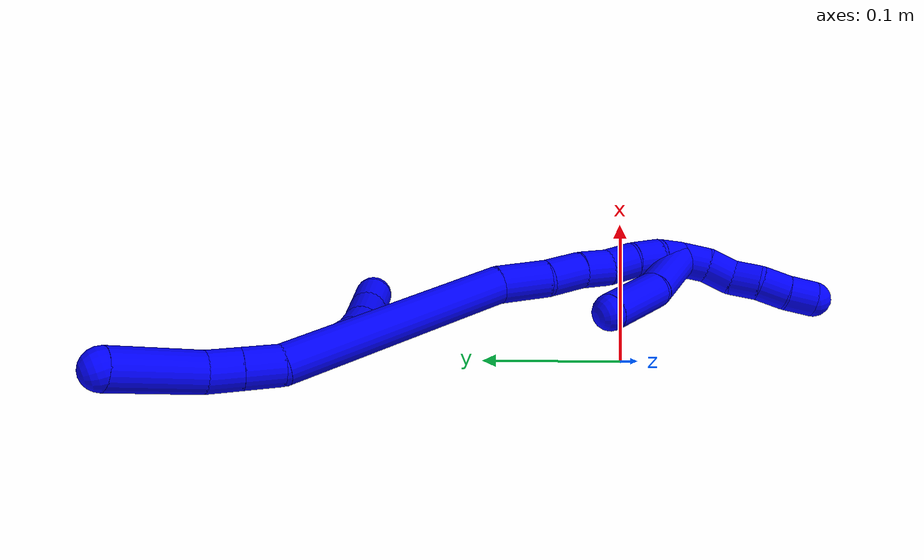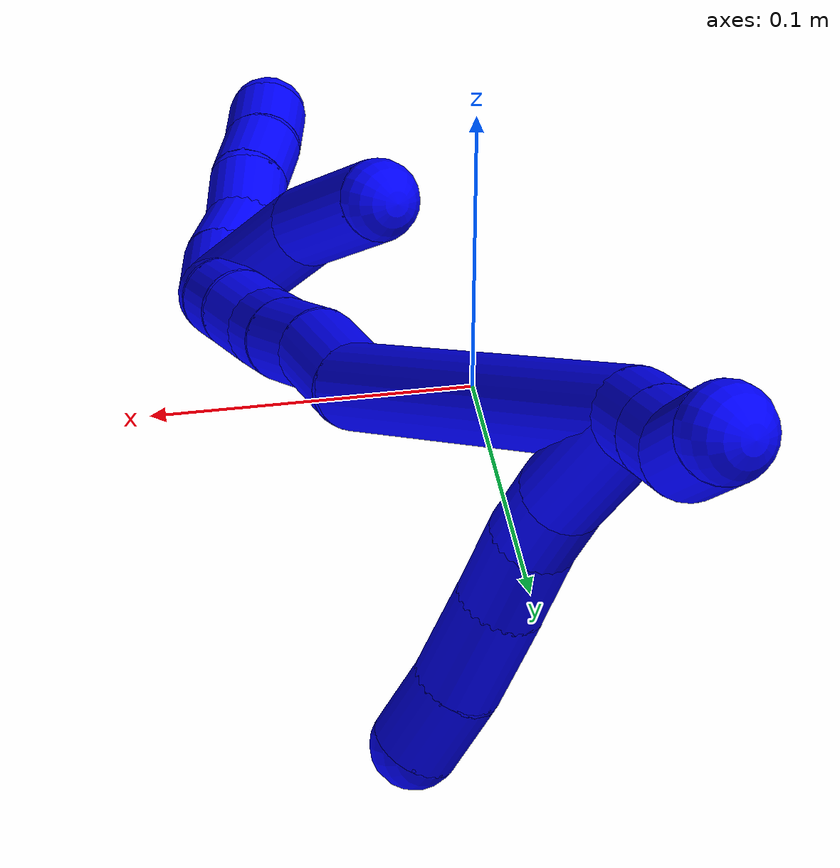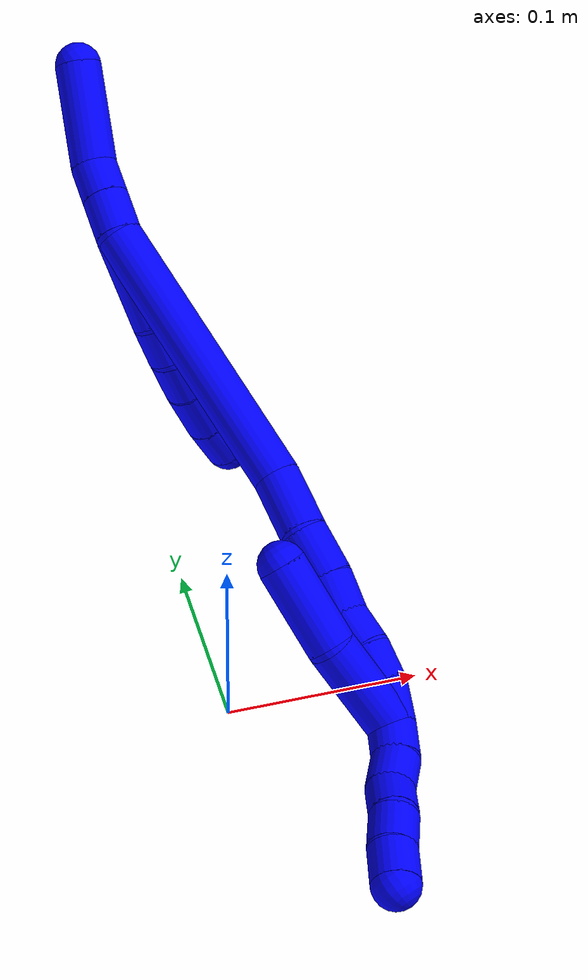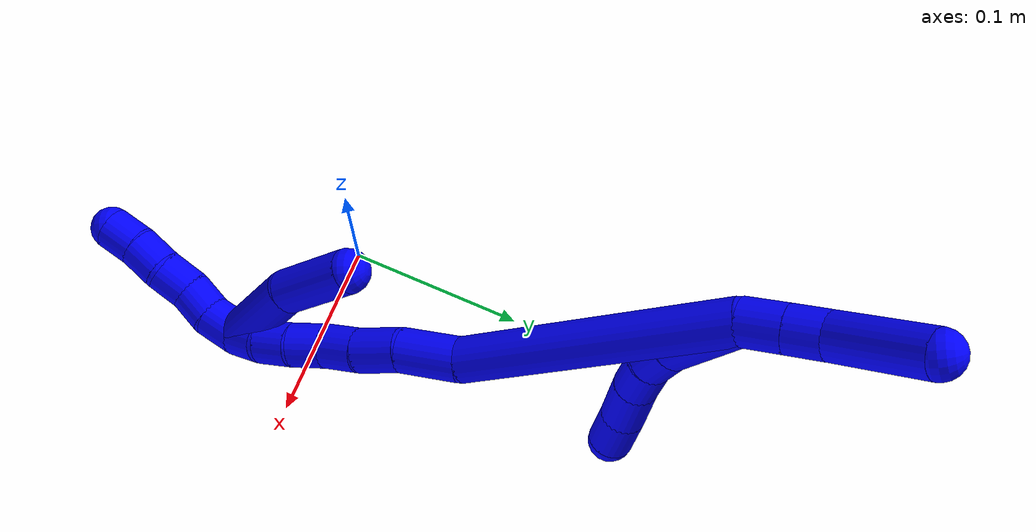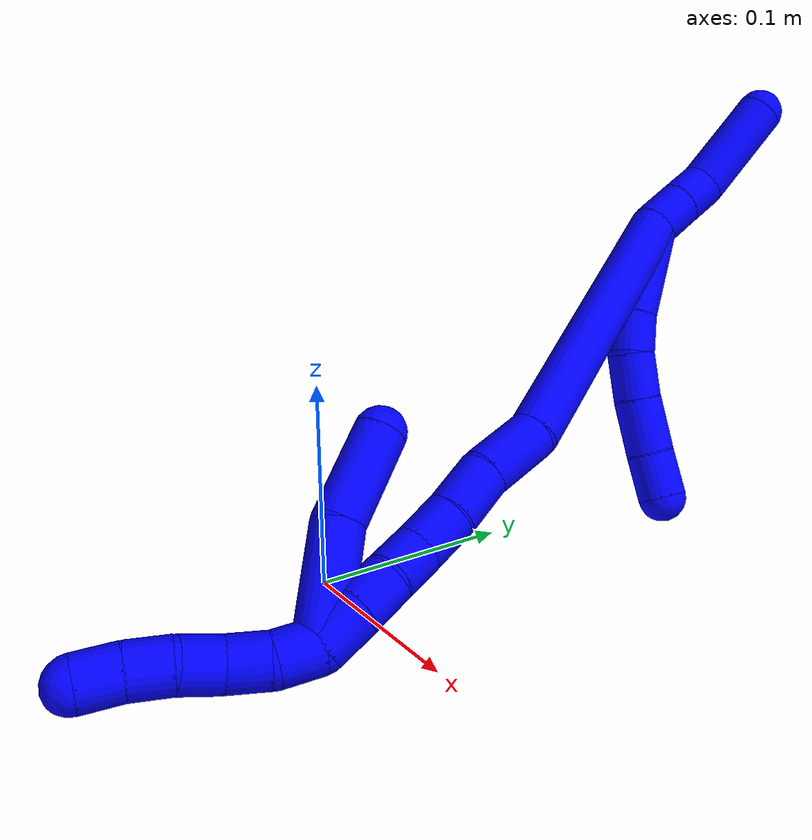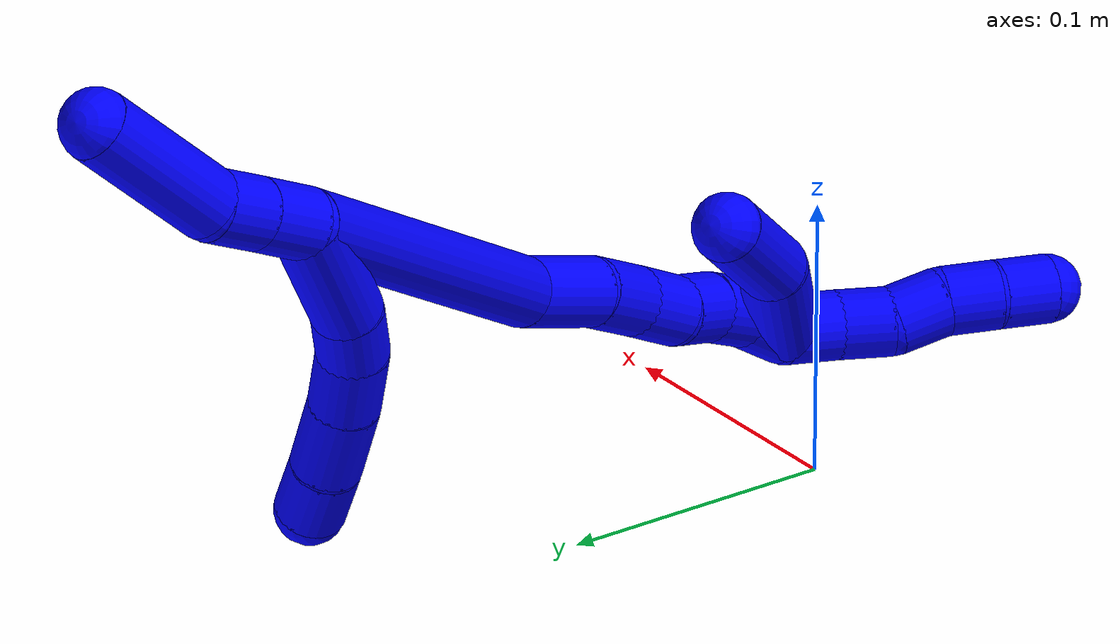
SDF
<sdf version="1.7">
 <world name="default">
  <model name="photoneo_s_sensor">
   <static>1</static>
   <pose>0 0 2 1.57079 1.57079 3.14159</pose>
   <link name="link">
    <inertial><mass>0.1</mass></inertial>
    <sensor name="sensor" type="depth">
     <update_rate>30</update_rate>
     <camera>
      <horizontal_fov>1.22</horizontal_fov>
      <image><width>1920</width><height>1200</height><format>B8G8R8</format></image>
      <clip><near>0.1</near><far>4</far></clip>
      <depth_camera><output>points</output></depth_camera>
     </camera>
     <plugin name="camera_plugin" filename="libgazebo_ros_depth_camera.so">
      <baseline>0.2</baseline>
      <alwaysOn>1</alwaysOn>
      <updateRate>0.0</updateRate>
      <cameraName>camera_ir</cameraName>
      <imageTopicName>/camera/color/image_raw</imageTopicName>
      <cameraInfoTopicName>/camera/color/camera_info</cameraInfoTopicName>
      <depthImageTopicName>/camera/depth/image_raw</depthImageTopicName>
      <depthImageCameraInfoTopicName>/camera/depth/camera_info</depthImageCameraInfoTopicName>
      <pointCloudTopicName>/camera/depth/points</pointCloudTopicName>
      <frameName>fr_optical</frameName>
      <pointCloudCutoff>0.1</pointCloudCutoff>
      <pointCloudCutoffMax>2.0</pointCloudCutoffMax>
      <distortionK1>0</distortionK1>
      <distortionK2>0</distortionK2>
      <distortionK3>0</distortionK3>
      <distortionT1>0</distortionT1>
      <distortionT2>0</distortionT2>
      <CxPrime>0</CxPrime>
      <Cx>0</Cx>
      <Cy>0</Cy>
      <focalLength>0</focalLength>
      <hackBaseline>0</hackBaseline>
     </plugin>
    </sensor>
   </link>
  </model>
  <model name="1">
   <static>0</static>
   <link name="1">
    <collision name="collision-cylinder-e_1_2_8">
     <pose>-0.006068 0.012363 -0.021232 -2.6143 -0.242125 0.846866</pose>
     <geometry><cylinder><radius>0.0125</radius><length>0.050615</length></cylinder></geometry>
     <surface>
      <friction><ode><mu>1.16</mu><mu2>1.16</mu2><slip1>0</slip1><slip2>0</slip2></ode></friction>
      <contact><ode><kp>1e+06</kp><kd>1</kd><max_vel>0</max_vel><min_depth>0.001</min_depth></ode></contact>
     </surface>
    </collision>
    <visual name="visual-cylinder-e_1_2_8">
     <pose>-0.006068 0.012363 -0.021232 -2.6143 -0.242125 0.846866</pose>
     <geometry><cylinder><radius>0.0125</radius><length>0.050615</length></cylinder></geometry>
     <material><ambient>0 0 1 1</ambient></material>
    </visual>
    <collision name="collision-cylinder-e_2_8_9">
     <pose>-0.014272 0.031597 -0.050329 -2.42353 -0.201781 0.526944</pose>
     <geometry><cylinder><radius>0.0125</radius><length>0.02132</length></cylinder></geometry>
     <surface>
      <friction><ode><mu>1.16</mu><mu2>1.16</mu2><slip1>0</slip1><slip2>0</slip2></ode></friction>
      <contact><ode><kp>1e+06</kp><kd>1</kd><max_vel>0</max_vel><min_depth>0.001</min_depth></ode></contact>
     </surface>
    </collision>
    <visual name="visual-cylinder-e_2_8_9">
     <pose>-0.014272 0.031597 -0.050329 -2.42353 -0.201781 0.526944</pose>
     <geometry><cylinder><radius>0.0125</radius><length>0.02132</length></cylinder></geometry>
     <material><ambient>0 0 1 1</ambient></material>
    </visual>
    <collision name="collision-cylinder-e_3_9_10">
     <pose>-0.018401 0.048336 -0.065112 -2.18232 -0.163894 0.313213</pose>
     <geometry><cylinder><radius>0.0125</radius><length>0.02443</length></cylinder></geometry>
     <surface>
      <friction><ode><mu>1.16</mu><mu2>1.16</mu2><slip1>0</slip1><slip2>0</slip2></ode></friction>
      <contact><ode><kp>1e+06</kp><kd>1</kd><max_vel>0</max_vel><min_depth>0.001</min_depth></ode></contact>
     </surface>
    </collision>
    <visual name="visual-cylinder-e_3_9_10">
     <pose>-0.018401 0.048336 -0.065112 -2.18232 -0.163894 0.313213</pose>
     <geometry><cylinder><radius>0.0125</radius><length>0.02443</length></cylinder></geometry>
     <material><ambient>0 0 1 1</ambient></material>
    </visual>
    <collision name="collision-cylinder-e_4_10_11">
     <pose>-0.021818 0.070783 -0.07969 -2.1177 -0.096364 0.171206</pose>
     <geometry><cylinder><radius>0.0125</radius><length>0.029594</length></cylinder></geometry>
     <surface>
      <friction><ode><mu>1.16</mu><mu2>1.16</mu2><slip1>0</slip1><slip2>0</slip2></ode></friction>
      <contact><ode><kp>1e+06</kp><kd>1</kd><max_vel>0</max_vel><min_depth>0.001</min_depth></ode></contact>
     </surface>
    </collision>
    <visual name="visual-cylinder-e_4_10_11">
     <pose>-0.021818 0.070783 -0.07969 -2.1177 -0.096364 0.171206</pose>
     <geometry><cylinder><radius>0.0125</radius><length>0.029594</length></cylinder></geometry>
     <material><ambient>0 0 1 1</ambient></material>
    </visual>
    <collision name="collision-cylinder-e_5_11_6">
     <pose>-0.023364 0.09331 -0.094099 -2.16692 -0.010192 0.01923</pose>
     <geometry><cylinder><radius>0.0125</radius><length>0.024042</length></cylinder></geometry>
     <surface>
      <friction><ode><mu>1.16</mu><mu2>1.16</mu2><slip1>0</slip1><slip2>0</slip2></ode></friction>
      <contact><ode><kp>1e+06</kp><kd>1</kd><max_vel>0</max_vel><min_depth>0.001</min_depth></ode></contact>
     </surface>
    </collision>
    <visual name="visual-cylinder-e_5_11_6">
     <pose>-0.023364 0.09331 -0.094099 -2.16692 -0.010192 0.01923</pose>
     <geometry><cylinder><radius>0.0125</radius><length>0.024042</length></cylinder></geometry>
     <material><ambient>0 0 1 1</ambient></material>
    </visual>
    <collision name="collision-cylinder-e_1_2_12">
     <pose>0.002808 0.001223 0.011217 -0.108598 0.243897 -0.013322</pose>
     <geometry><cylinder><radius>0.0125</radius><length>0.023255</length></cylinder></geometry>
     <surface>
      <friction><ode><mu>1.16</mu><mu2>1.16</mu2><slip1>0</slip1><slip2>0</slip2></ode></friction>
      <contact><ode><kp>1e+06</kp><kd>1</kd><max_vel>0</max_vel><min_depth>0.001</min_depth></ode></contact>
     </surface>
    </collision>
    <visual name="visual-cylinder-e_1_2_12">
     <pose>0.002808 0.001223 0.011217 -0.108598 0.243897 -0.013322</pose>
     <geometry><cylinder><radius>0.0125</radius><length>0.023255</length></cylinder></geometry>
     <material><ambient>0 0 1 1</ambient></material>
    </visual>
    <collision name="collision-cylinder-e_2_12_13">
     <pose>0.0081 0.003649 0.032468 -0.119296 0.24106 -0.014466</pose>
     <geometry><cylinder><radius>0.0125</radius><length>0.020812</length></cylinder></geometry>
     <surface>
      <friction><ode><mu>1.16</mu><mu2>1.16</mu2><slip1>0</slip1><slip2>0</slip2></ode></friction>
      <contact><ode><kp>1e+06</kp><kd>1</kd><max_vel>0</max_vel><min_depth>0.001</min_depth></ode></contact>
     </surface>
    </collision>
    <visual name="visual-cylinder-e_2_12_13">
     <pose>0.0081 0.003649 0.032468 -0.119296 0.24106 -0.014466</pose>
     <geometry><cylinder><radius>0.0125</radius><length>0.020812</length></cylinder></geometry>
     <material><ambient>0 0 1 1</ambient></material>
    </visual>
    <collision name="collision-cylinder-e_3_13_5">
     <pose>0.023039 0.001282 0.067285 0.143015 0.461547 0.033657</pose>
     <geometry><cylinder><radius>0.0125</radius><length>0.055932</length></cylinder></geometry>
     <surface>
      <friction><ode><mu>1.16</mu><mu2>1.16</mu2><slip1>0</slip1><slip2>0</slip2></ode></friction>
      <contact><ode><kp>1e+06</kp><kd>1</kd><max_vel>0</max_vel><min_depth>0.001</min_depth></ode></contact>
     </surface>
    </collision>
    <visual name="visual-cylinder-e_3_13_5">
     <pose>0.023039 0.001282 0.067285 0.143015 0.461547 0.033657</pose>
     <geometry><cylinder><radius>0.0125</radius><length>0.055932</length></cylinder></geometry>
     <material><ambient>0 0 1 1</ambient></material>
    </visual>
    <collision name="collision-cylinder-e_1_2_14">
     <pose>-0.003274 0.00695 -0.076896 -3.05146 -0.042374 0.878509</pose>
     <geometry><cylinder><radius>0.0125</radius><length>0.154557</length></cylinder></geometry>
     <surface>
      <friction><ode><mu>1.16</mu><mu2>1.16</mu2><slip1>0</slip1><slip2>0</slip2></ode></friction>
      <contact><ode><kp>1e+06</kp><kd>1</kd><max_vel>0</max_vel><min_depth>0.001</min_depth></ode></contact>
     </surface>
    </collision>
    <visual name="visual-cylinder-e_1_2_14">
     <pose>-0.003274 0.00695 -0.076896 -3.05146 -0.042374 0.878509</pose>
     <geometry><cylinder><radius>0.0125</radius><length>0.154557</length></cylinder></geometry>
     <material><ambient>0 0 1 1</ambient></material>
    </visual>
    <collision name="collision-cylinder-e_2_14_15">
     <pose>-0.008983 0.010421 -0.170648 2.9381 -0.140566 -1.20733</pose>
     <geometry><cylinder><radius>0.0125</radius><length>0.034766</length></cylinder></geometry>
     <surface>
      <friction><ode><mu>1.16</mu><mu2>1.16</mu2><slip1>0</slip1><slip2>0</slip2></ode></friction>
      <contact><ode><kp>1e+06</kp><kd>1</kd><max_vel>0</max_vel><min_depth>0.001</min_depth></ode></contact>
     </surface>
    </collision>
    <visual name="visual-cylinder-e_2_14_15">
     <pose>-0.008983 0.010421 -0.170648 2.9381 -0.140566 -1.20733</pose>
     <geometry><cylinder><radius>0.0125</radius><length>0.034766</length></cylinder></geometry>
     <material><ambient>0 0 1 1</ambient></material>
    </visual>
    <collision name="collision-cylinder-e_3_15_16">
     <pose>-0.012809 0.006862 -0.200765 3.1355 -0.104547 -3.02536</pose>
     <geometry><cylinder><radius>0.0125</radius><length>0.026668</length></cylinder></geometry>
     <surface>
      <friction><ode><mu>1.16</mu><mu2>1.16</mu2><slip1>0</slip1><slip2>0</slip2></ode></friction>
      <contact><ode><kp>1e+06</kp><kd>1</kd><max_vel>0</max_vel><min_depth>0.001</min_depth></ode></contact>
     </surface>
    </collision>
    <visual name="visual-cylinder-e_3_15_16">
     <pose>-0.012809 0.006862 -0.200765 3.1355 -0.104547 -3.02536</pose>
     <geometry><cylinder><radius>0.0125</radius><length>0.026668</length></cylinder></geometry>
     <material><ambient>0 0 1 1</ambient></material>
    </visual>
    <collision name="collision-cylinder-e_4_16_17">
     <pose>-0.016703 0.006084 -0.224998 3.07814 -0.223739 -2.59088</pose>
     <geometry><cylinder><radius>0.0125</radius><length>0.022551</length></cylinder></geometry>
     <surface>
      <friction><ode><mu>1.16</mu><mu2>1.16</mu2><slip1>0</slip1><slip2>0</slip2></ode></friction>
      <contact><ode><kp>1e+06</kp><kd>1</kd><max_vel>0</max_vel><min_depth>0.001</min_depth></ode></contact>
     </surface>
    </collision>
    <visual name="visual-cylinder-e_4_16_17">
     <pose>-0.016703 0.006084 -0.224998 3.07814 -0.223739 -2.59088</pose>
     <geometry><cylinder><radius>0.0125</radius><length>0.022551</length></cylinder></geometry>
     <material><ambient>0 0 1 1</ambient></material>
    </visual>
    <collision name="collision-cylinder-e_5_17_18">
     <pose>-0.019266 0.003757 -0.246012 2.98067 -0.006037 -0.074833</pose>
     <geometry><cylinder><radius>0.0125</radius><length>0.020348</length></cylinder></geometry>
     <surface>
      <friction><ode><mu>1.16</mu><mu2>1.16</mu2><slip1>0</slip1><slip2>0</slip2></ode></friction>
      <contact><ode><kp>1e+06</kp><kd>1</kd><max_vel>0</max_vel><min_depth>0.001</min_depth></ode></contact>
     </surface>
    </collision>
    <visual name="visual-cylinder-e_5_17_18">
     <pose>-0.019266 0.003757 -0.246012 2.98067 -0.006037 -0.074833</pose>
     <geometry><cylinder><radius>0.0125</radius><length>0.020348</length></cylinder></geometry>
     <material><ambient>0 0 1 1</ambient></material>
    </visual>
    <collision name="collision-cylinder-e_6_18_19">
     <pose>-0.021016 0.00117 -0.266047 3.04606 -0.166649 -2.10191</pose>
     <geometry><cylinder><radius>0.0125</radius><length>0.020357</length></cylinder></geometry>
     <surface>
      <friction><ode><mu>1.16</mu><mu2>1.16</mu2><slip1>0</slip1><slip2>0</slip2></ode></friction>
      <contact><ode><kp>1e+06</kp><kd>1</kd><max_vel>0</max_vel><min_depth>0.001</min_depth></ode></contact>
     </surface>
    </collision>
    <visual name="visual-cylinder-e_6_18_19">
     <pose>-0.021016 0.00117 -0.266047 3.04606 -0.166649 -2.10191</pose>
     <geometry><cylinder><radius>0.0125</radius><length>0.020357</length></cylinder></geometry>
     <material><ambient>0 0 1 1</ambient></material>
    </visual>
    <collision name="collision-cylinder-e_7_19_1">
     <pose>-0.026778 -0.000108 -0.285577 3.1081 -0.403434 -2.97816</pose>
     <geometry><cylinder><radius>0.0125</radius><length>0.020753</length></cylinder></geometry>
     <surface>
      <friction><ode><mu>1.16</mu><mu2>1.16</mu2><slip1>0</slip1><slip2>0</slip2></ode></friction>
      <contact><ode><kp>1e+06</kp><kd>1</kd><max_vel>0</max_vel><min_depth>0.001</min_depth></ode></contact>
     </surface>
    </collision>
    <visual name="visual-cylinder-e_7_19_1">
     <pose>-0.026778 -0.000108 -0.285577 3.1081 -0.403434 -2.97816</pose>
     <geometry><cylinder><radius>0.0125</radius><length>0.020753</length></cylinder></geometry>
     <material><ambient>0 0 1 1</ambient></material>
    </visual>
    <collision name="collision-cylinder-e_1_1_20">
     <pose>-0.030802 -0.013962 -0.272264 0.534724 0.001862 0.00051</pose>
     <geometry><cylinder><radius>0.0125</radius><length>0.053118</length></cylinder></geometry>
     <surface>
      <friction><ode><mu>1.16</mu><mu2>1.16</mu2><slip1>0</slip1><slip2>0</slip2></ode></friction>
      <contact><ode><kp>1e+06</kp><kd>1</kd><max_vel>0</max_vel><min_depth>0.001</min_depth></ode></contact>
     </surface>
    </collision>
    <visual name="visual-cylinder-e_1_1_20">
     <pose>-0.030802 -0.013962 -0.272264 0.534724 0.001862 0.00051</pose>
     <geometry><cylinder><radius>0.0125</radius><length>0.053118</length></cylinder></geometry>
     <material><ambient>0 0 1 1</ambient></material>
    </visual>
    <collision name="collision-cylinder-e_2_20_4">
     <pose>-0.028818 -0.03351 -0.226838 0.260347 0.082636 0.010824</pose>
     <geometry><cylinder><radius>0.0125</radius><length>0.046882</length></cylinder></geometry>
     <surface>
      <friction><ode><mu>1.16</mu><mu2>1.16</mu2><slip1>0</slip1><slip2>0</slip2></ode></friction>
      <contact><ode><kp>1e+06</kp><kd>1</kd><max_vel>0</max_vel><min_depth>0.001</min_depth></ode></contact>
     </surface>
    </collision>
    <visual name="visual-cylinder-e_2_20_4">
     <pose>-0.028818 -0.03351 -0.226838 0.260347 0.082636 0.010824</pose>
     <geometry><cylinder><radius>0.0125</radius><length>0.046882</length></cylinder></geometry>
     <material><ambient>0 0 1 1</ambient></material>
    </visual>
    <collision name="collision-cylinder-e_1_1_21">
     <pose>-0.034319 -0.005483 -0.303016 2.57233 -0.354131 -1.09782</pose>
     <geometry><cylinder><radius>0.0125</radius><length>0.02</length></cylinder></geometry>
     <surface>
      <friction><ode><mu>1.16</mu><mu2>1.16</mu2><slip1>0</slip1><slip2>0</slip2></ode></friction>
      <contact><ode><kp>1e+06</kp><kd>1</kd><max_vel>0</max_vel><min_depth>0.001</min_depth></ode></contact>
     </surface>
    </collision>
    <visual name="visual-cylinder-e_1_1_21">
     <pose>-0.034319 -0.005483 -0.303016 2.57233 -0.354131 -1.09782</pose>
     <geometry><cylinder><radius>0.0125</radius><length>0.02</length></cylinder></geometry>
     <material><ambient>0 0 1 1</ambient></material>
    </visual>
    <collision name="collision-cylinder-e_2_21_22">
     <pose>-0.042838 -0.016742 -0.316917 2.3396 -0.529477 -1.13783</pose>
     <geometry><cylinder><radius>0.0125</radius><length>0.02</length></cylinder></geometry>
     <surface>
      <friction><ode><mu>1.16</mu><mu2>1.16</mu2><slip1>0</slip1><slip2>0</slip2></ode></friction>
      <contact><ode><kp>1e+06</kp><kd>1</kd><max_vel>0</max_vel><min_depth>0.001</min_depth></ode></contact>
     </surface>
    </collision>
    <visual name="visual-cylinder-e_2_21_22">
     <pose>-0.042838 -0.016742 -0.316917 2.3396 -0.529477 -1.13783</pose>
     <geometry><cylinder><radius>0.0125</radius><length>0.02</length></cylinder></geometry>
     <material><ambient>0 0 1 1</ambient></material>
    </visual>
    <collision name="collision-cylinder-e_3_22_23">
     <pose>-0.050034 -0.030337 -0.329301 2.28312 -0.216181 -0.465575</pose>
     <geometry><cylinder><radius>0.0125</radius><length>0.02</length></cylinder></geometry>
     <surface>
      <friction><ode><mu>1.16</mu><mu2>1.16</mu2><slip1>0</slip1><slip2>0</slip2></ode></friction>
      <contact><ode><kp>1e+06</kp><kd>1</kd><max_vel>0</max_vel><min_depth>0.001</min_depth></ode></contact>
     </surface>
    </collision>
    <visual name="visual-cylinder-e_3_22_23">
     <pose>-0.050034 -0.030337 -0.329301 2.28312 -0.216181 -0.465575</pose>
     <geometry><cylinder><radius>0.0125</radius><length>0.02</length></cylinder></geometry>
     <material><ambient>0 0 1 1</ambient></material>
    </visual>
    <collision name="collision-cylinder-e_4_23_24">
     <pose>-0.05637 -0.043931 -0.342316 2.38961 -0.432475 -1.01557</pose>
     <geometry><cylinder><radius>0.0125</radius><length>0.02</length></cylinder></geometry>
     <surface>
      <friction><ode><mu>1.16</mu><mu2>1.16</mu2><slip1>0</slip1><slip2>0</slip2></ode></friction>
      <contact><ode><kp>1e+06</kp><kd>1</kd><max_vel>0</max_vel><min_depth>0.001</min_depth></ode></contact>
     </surface>
    </collision>
    <visual name="visual-cylinder-e_4_23_24">
     <pose>-0.05637 -0.043931 -0.342316 2.38961 -0.432475 -1.01557</pose>
     <geometry><cylinder><radius>0.0125</radius><length>0.02</length></cylinder></geometry>
     <material><ambient>0 0 1 1</ambient></material>
    </visual>
    <collision name="collision-cylinder-e_5_24_3">
     <pose>-0.06405 -0.055558 -0.356589 2.52429 -0.356351 -1.02829</pose>
     <geometry><cylinder><radius>0.0125</radius><length>0.02</length></cylinder></geometry>
     <surface>
      <friction><ode><mu>1.16</mu><mu2>1.16</mu2><slip1>0</slip1><slip2>0</slip2></ode></friction>
      <contact><ode><kp>1e+06</kp><kd>1</kd><max_vel>0</max_vel><min_depth>0.001</min_depth></ode></contact>
     </surface>
    </collision>
    <visual name="visual-cylinder-e_5_24_3">
     <pose>-0.06405 -0.055558 -0.356589 2.52429 -0.356351 -1.02829</pose>
     <geometry><cylinder><radius>0.0125</radius><length>0.02</length></cylinder></geometry>
     <material><ambient>0 0 1 1</ambient></material>
    </visual>
    <collision name="collision-sphere-3">
     <pose>-0.067538 -0.060983 -0.364231 0 -0 0</pose>
     <geometry><sphere><radius>0.0125</radius></sphere></geometry>
     <surface>
      <friction><ode><mu>1.16</mu><mu2>1.16</mu2><slip1>0</slip1><slip2>0</slip2></ode></friction>
      <contact><ode><kp>1e+06</kp><kd>1</kd><max_vel>0</max_vel><min_depth>0.001</min_depth></ode></contact>
     </surface>
    </collision>
    <visual name="visual-sphere-3">
     <pose>-0.067538 -0.060983 -0.364231 0 -0 0</pose>
     <geometry><sphere><radius>0.0125</radius></sphere></geometry>
     <material><ambient>0 0 1 1</ambient></material>
    </visual>
    <collision name="collision-sphere-24">
     <pose>-0.060561 -0.050133 -0.348947 0 -0 0</pose>
     <geometry><sphere><radius>0.0125</radius></sphere></geometry>
     <surface>
      <friction><ode><mu>1.16</mu><mu2>1.16</mu2><slip1>0</slip1><slip2>0</slip2></ode></friction>
      <contact><ode><kp>1e+06</kp><kd>1</kd><max_vel>0</max_vel><min_depth>0.001</min_depth></ode></contact>
     </surface>
    </collision>
    <visual name="visual-sphere-24">
     <pose>-0.060561 -0.050133 -0.348947 0 -0 0</pose>
     <geometry><sphere><radius>0.0125</radius></sphere></geometry>
     <material><ambient>0 0 1 1</ambient></material>
    </visual>
    <collision name="collision-sphere-23">
     <pose>-0.052179 -0.037729 -0.335685 0 -0 0</pose>
     <geometry><sphere><radius>0.0125</radius></sphere></geometry>
     <surface>
      <friction><ode><mu>1.16</mu><mu2>1.16</mu2><slip1>0</slip1><slip2>0</slip2></ode></friction>
      <contact><ode><kp>1e+06</kp><kd>1</kd><max_vel>0</max_vel><min_depth>0.001</min_depth></ode></contact>
     </surface>
    </collision>
    <visual name="visual-sphere-23">
     <pose>-0.052179 -0.037729 -0.335685 0 -0 0</pose>
     <geometry><sphere><radius>0.0125</radius></sphere></geometry>
     <material><ambient>0 0 1 1</ambient></material>
    </visual>
    <collision name="collision-sphere-22">
     <pose>-0.047889 -0.022945 -0.322917 0 -0 0</pose>
     <geometry><sphere><radius>0.0125</radius></sphere></geometry>
     <surface>
      <friction><ode><mu>1.16</mu><mu2>1.16</mu2><slip1>0</slip1><slip2>0</slip2></ode></friction>
      <contact><ode><kp>1e+06</kp><kd>1</kd><max_vel>0</max_vel><min_depth>0.001</min_depth></ode></contact>
     </surface>
    </collision>
    <visual name="visual-sphere-22">
     <pose>-0.047889 -0.022945 -0.322917 0 -0 0</pose>
     <geometry><sphere><radius>0.0125</radius></sphere></geometry>
     <material><ambient>0 0 1 1</ambient></material>
    </visual>
    <collision name="collision-sphere-21">
     <pose>-0.037787 -0.010538 -0.310916 0 -0 0</pose>
     <geometry><sphere><radius>0.0125</radius></sphere></geometry>
     <surface>
      <friction><ode><mu>1.16</mu><mu2>1.16</mu2><slip1>0</slip1><slip2>0</slip2></ode></friction>
      <contact><ode><kp>1e+06</kp><kd>1</kd><max_vel>0</max_vel><min_depth>0.001</min_depth></ode></contact>
     </surface>
    </collision>
    <visual name="visual-sphere-21">
     <pose>-0.037787 -0.010538 -0.310916 0 -0 0</pose>
     <geometry><sphere><radius>0.0125</radius></sphere></geometry>
     <material><ambient>0 0 1 1</ambient></material>
    </visual>
    <collision name="collision-sphere-4">
     <pose>-0.026883 -0.039523 -0.204265 0 -0 0</pose>
     <geometry><sphere><radius>0.0125</radius></sphere></geometry>
     <surface>
      <friction><ode><mu>1.16</mu><mu2>1.16</mu2><slip1>0</slip1><slip2>0</slip2></ode></friction>
      <contact><ode><kp>1e+06</kp><kd>1</kd><max_vel>0</max_vel><min_depth>0.001</min_depth></ode></contact>
     </surface>
    </collision>
    <visual name="visual-sphere-4">
     <pose>-0.026883 -0.039523 -0.204265 0 -0 0</pose>
     <geometry><sphere><radius>0.0125</radius></sphere></geometry>
     <material><ambient>0 0 1 1</ambient></material>
    </visual>
    <collision name="collision-sphere-20">
     <pose>-0.030753 -0.027496 -0.249412 0 -0 0</pose>
     <geometry><sphere><radius>0.0125</radius></sphere></geometry>
     <surface>
      <friction><ode><mu>1.16</mu><mu2>1.16</mu2><slip1>0</slip1><slip2>0</slip2></ode></friction>
      <contact><ode><kp>1e+06</kp><kd>1</kd><max_vel>0</max_vel><min_depth>0.001</min_depth></ode></contact>
     </surface>
    </collision>
    <visual name="visual-sphere-20">
     <pose>-0.030753 -0.027496 -0.249412 0 -0 0</pose>
     <geometry><sphere><radius>0.0125</radius></sphere></geometry>
     <material><ambient>0 0 1 1</ambient></material>
    </visual>
    <collision name="collision-sphere-6">
     <pose>-0.023487 0.103257 -0.100847 0 -0 0</pose>
     <geometry><sphere><radius>0.0125</radius></sphere></geometry>
     <surface>
      <friction><ode><mu>1.16</mu><mu2>1.16</mu2><slip1>0</slip1><slip2>0</slip2></ode></friction>
      <contact><ode><kp>1e+06</kp><kd>1</kd><max_vel>0</max_vel><min_depth>0.001</min_depth></ode></contact>
     </surface>
    </collision>
    <visual name="visual-sphere-6">
     <pose>-0.023487 0.103257 -0.100847 0 -0 0</pose>
     <geometry><sphere><radius>0.0125</radius></sphere></geometry>
     <material><ambient>0 0 1 1</ambient></material>
    </visual>
    <collision name="collision-sphere-11">
     <pose>-0.023242 0.083363 -0.08735 0 -0 0</pose>
     <geometry><sphere><radius>0.0125</radius></sphere></geometry>
     <surface>
      <friction><ode><mu>1.16</mu><mu2>1.16</mu2><slip1>0</slip1><slip2>0</slip2></ode></friction>
      <contact><ode><kp>1e+06</kp><kd>1</kd><max_vel>0</max_vel><min_depth>0.001</min_depth></ode></contact>
     </surface>
    </collision>
    <visual name="visual-sphere-11">
     <pose>-0.023242 0.083363 -0.08735 0 -0 0</pose>
     <geometry><sphere><radius>0.0125</radius></sphere></geometry>
     <material><ambient>0 0 1 1</ambient></material>
    </visual>
    <collision name="collision-sphere-10">
     <pose>-0.020394 0.058203 -0.072031 0 -0 0</pose>
     <geometry><sphere><radius>0.0125</radius></sphere></geometry>
     <surface>
      <friction><ode><mu>1.16</mu><mu2>1.16</mu2><slip1>0</slip1><slip2>0</slip2></ode></friction>
      <contact><ode><kp>1e+06</kp><kd>1</kd><max_vel>0</max_vel><min_depth>0.001</min_depth></ode></contact>
     </surface>
    </collision>
    <visual name="visual-sphere-10">
     <pose>-0.020394 0.058203 -0.072031 0 -0 0</pose>
     <geometry><sphere><radius>0.0125</radius></sphere></geometry>
     <material><ambient>0 0 1 1</ambient></material>
    </visual>
    <collision name="collision-sphere-9">
     <pose>-0.016408 0.038469 -0.058193 0 -0 0</pose>
     <geometry><sphere><radius>0.0125</radius></sphere></geometry>
     <surface>
      <friction><ode><mu>1.16</mu><mu2>1.16</mu2><slip1>0</slip1><slip2>0</slip2></ode></friction>
      <contact><ode><kp>1e+06</kp><kd>1</kd><max_vel>0</max_vel><min_depth>0.001</min_depth></ode></contact>
     </surface>
    </collision>
    <visual name="visual-sphere-9">
     <pose>-0.016408 0.038469 -0.058193 0 -0 0</pose>
     <geometry><sphere><radius>0.0125</radius></sphere></geometry>
     <material><ambient>0 0 1 1</ambient></material>
    </visual>
    <collision name="collision-sphere-2">
     <geometry><sphere><radius>0.0125</radius></sphere></geometry>
     <surface>
      <friction><ode><mu>1.16</mu><mu2>1.16</mu2><slip1>0</slip1><slip2>0</slip2></ode></friction>
      <contact><ode><kp>1e+06</kp><kd>1</kd><max_vel>0</max_vel><min_depth>0.001</min_depth></ode></contact>
     </surface>
    </collision>
    <visual name="visual-sphere-2">
     <geometry><sphere><radius>0.0125</radius></sphere></geometry>
     <material><ambient>0 0 1 1</ambient></material>
    </visual>
    <collision name="collision-sphere-19">
     <pose>-0.022704 0.000212 -0.276039 0 -0 0</pose>
     <geometry><sphere><radius>0.0125</radius></sphere></geometry>
     <surface>
      <friction><ode><mu>1.16</mu><mu2>1.16</mu2><slip1>0</slip1><slip2>0</slip2></ode></friction>
      <contact><ode><kp>1e+06</kp><kd>1</kd><max_vel>0</max_vel><min_depth>0.001</min_depth></ode></contact>
     </surface>
    </collision>
    <visual name="visual-sphere-19">
     <pose>-0.022704 0.000212 -0.276039 0 -0 0</pose>
     <geometry><sphere><radius>0.0125</radius></sphere></geometry>
     <material><ambient>0 0 1 1</ambient></material>
    </visual>
    <collision name="collision-sphere-8">
     <pose>-0.012136 0.024726 -0.042464 0 -0 0</pose>
     <geometry><sphere><radius>0.0125</radius></sphere></geometry>
     <surface>
      <friction><ode><mu>1.16</mu><mu2>1.16</mu2><slip1>0</slip1><slip2>0</slip2></ode></friction>
      <contact><ode><kp>1e+06</kp><kd>1</kd><max_vel>0</max_vel><min_depth>0.001</min_depth></ode></contact>
     </surface>
    </collision>
    <visual name="visual-sphere-8">
     <pose>-0.012136 0.024726 -0.042464 0 -0 0</pose>
     <geometry><sphere><radius>0.0125</radius></sphere></geometry>
     <material><ambient>0 0 1 1</ambient></material>
    </visual>
    <collision name="collision-sphere-12">
     <pose>0.005616 0.002446 0.022434 0 -0 0</pose>
     <geometry><sphere><radius>0.0125</radius></sphere></geometry>
     <surface>
      <friction><ode><mu>1.16</mu><mu2>1.16</mu2><slip1>0</slip1><slip2>0</slip2></ode></friction>
      <contact><ode><kp>1e+06</kp><kd>1</kd><max_vel>0</max_vel><min_depth>0.001</min_depth></ode></contact>
     </surface>
    </collision>
    <visual name="visual-sphere-12">
     <pose>0.005616 0.002446 0.022434 0 -0 0</pose>
     <geometry><sphere><radius>0.0125</radius></sphere></geometry>
     <material><ambient>0 0 1 1</ambient></material>
    </visual>
    <collision name="collision-sphere-13">
     <pose>0.010584 0.004851 0.042501 0 -0 0</pose>
     <geometry><sphere><radius>0.0125</radius></sphere></geometry>
     <surface>
      <friction><ode><mu>1.16</mu><mu2>1.16</mu2><slip1>0</slip1><slip2>0</slip2></ode></friction>
      <contact><ode><kp>1e+06</kp><kd>1</kd><max_vel>0</max_vel><min_depth>0.001</min_depth></ode></contact>
     </surface>
    </collision>
    <visual name="visual-sphere-13">
     <pose>0.010584 0.004851 0.042501 0 -0 0</pose>
     <geometry><sphere><radius>0.0125</radius></sphere></geometry>
     <material><ambient>0 0 1 1</ambient></material>
    </visual>
    <collision name="collision-sphere-5">
     <pose>0.035493 -0.002287 0.09207 0 -0 0</pose>
     <geometry><sphere><radius>0.0125</radius></sphere></geometry>
     <surface>
      <friction><ode><mu>1.16</mu><mu2>1.16</mu2><slip1>0</slip1><slip2>0</slip2></ode></friction>
      <contact><ode><kp>1e+06</kp><kd>1</kd><max_vel>0</max_vel><min_depth>0.001</min_depth></ode></contact>
     </surface>
    </collision>
    <visual name="visual-sphere-5">
     <pose>0.035493 -0.002287 0.09207 0 -0 0</pose>
     <geometry><sphere><radius>0.0125</radius></sphere></geometry>
     <material><ambient>0 0 1 1</ambient></material>
    </visual>
    <collision name="collision-sphere-14">
     <pose>-0.006547 0.0139 -0.153791 0 -0 0</pose>
     <geometry><sphere><radius>0.0125</radius></sphere></geometry>
     <surface>
      <friction><ode><mu>1.16</mu><mu2>1.16</mu2><slip1>0</slip1><slip2>0</slip2></ode></friction>
      <contact><ode><kp>1e+06</kp><kd>1</kd><max_vel>0</max_vel><min_depth>0.001</min_depth></ode></contact>
     </surface>
    </collision>
    <visual name="visual-sphere-14">
     <pose>-0.006547 0.0139 -0.153791 0 -0 0</pose>
     <geometry><sphere><radius>0.0125</radius></sphere></geometry>
     <material><ambient>0 0 1 1</ambient></material>
    </visual>
    <collision name="collision-sphere-15">
     <pose>-0.011418 0.006943 -0.187504 0 -0 0</pose>
     <geometry><sphere><radius>0.0125</radius></sphere></geometry>
     <surface>
      <friction><ode><mu>1.16</mu><mu2>1.16</mu2><slip1>0</slip1><slip2>0</slip2></ode></friction>
      <contact><ode><kp>1e+06</kp><kd>1</kd><max_vel>0</max_vel><min_depth>0.001</min_depth></ode></contact>
     </surface>
    </collision>
    <visual name="visual-sphere-15">
     <pose>-0.011418 0.006943 -0.187504 0 -0 0</pose>
     <geometry><sphere><radius>0.0125</radius></sphere></geometry>
     <material><ambient>0 0 1 1</ambient></material>
    </visual>
    <collision name="collision-sphere-16">
     <pose>-0.014201 0.006782 -0.214025 0 -0 0</pose>
     <geometry><sphere><radius>0.0125</radius></sphere></geometry>
     <surface>
      <friction><ode><mu>1.16</mu><mu2>1.16</mu2><slip1>0</slip1><slip2>0</slip2></ode></friction>
      <contact><ode><kp>1e+06</kp><kd>1</kd><max_vel>0</max_vel><min_depth>0.001</min_depth></ode></contact>
     </surface>
    </collision>
    <visual name="visual-sphere-16">
     <pose>-0.014201 0.006782 -0.214025 0 -0 0</pose>
     <geometry><sphere><radius>0.0125</radius></sphere></geometry>
     <material><ambient>0 0 1 1</ambient></material>
    </visual>
    <collision name="collision-sphere-17">
     <pose>-0.019204 0.005387 -0.23597 0 -0 0</pose>
     <geometry><sphere><radius>0.0125</radius></sphere></geometry>
     <surface>
      <friction><ode><mu>1.16</mu><mu2>1.16</mu2><slip1>0</slip1><slip2>0</slip2></ode></friction>
      <contact><ode><kp>1e+06</kp><kd>1</kd><max_vel>0</max_vel><min_depth>0.001</min_depth></ode></contact>
     </surface>
    </collision>
    <visual name="visual-sphere-17">
     <pose>-0.019204 0.005387 -0.23597 0 -0 0</pose>
     <geometry><sphere><radius>0.0125</radius></sphere></geometry>
     <material><ambient>0 0 1 1</ambient></material>
    </visual>
    <collision name="collision-sphere-18">
     <pose>-0.019327 0.002127 -0.256055 0 -0 0</pose>
     <geometry><sphere><radius>0.0125</radius></sphere></geometry>
     <surface>
      <friction><ode><mu>1.16</mu><mu2>1.16</mu2><slip1>0</slip1><slip2>0</slip2></ode></friction>
      <contact><ode><kp>1e+06</kp><kd>1</kd><max_vel>0</max_vel><min_depth>0.001</min_depth></ode></contact>
     </surface>
    </collision>
    <visual name="visual-sphere-18">
     <pose>-0.019327 0.002127 -0.256055 0 -0 0</pose>
     <geometry><sphere><radius>0.0125</radius></sphere></geometry>
     <material><ambient>0 0 1 1</ambient></material>
    </visual>
    <collision name="collision-sphere-1">
     <pose>-0.030852 -0.000427 -0.295115 0 -0 0</pose>
     <geometry><sphere><radius>0.0125</radius></sphere></geometry>
     <surface>
      <friction><ode><mu>1.16</mu><mu2>1.16</mu2><slip1>0</slip1><slip2>0</slip2></ode></friction>
      <contact><ode><kp>1e+06</kp><kd>1</kd><max_vel>0</max_vel><min_depth>0.001</min_depth></ode></contact>
     </surface>
    </collision>
    <visual name="visual-sphere-1">
     <pose>-0.030852 -0.000427 -0.295115 0 -0 0</pose>
     <geometry><sphere><radius>0.0125</radius></sphere></geometry>
     <material><ambient>0 0 1 1</ambient></material>
    </visual>
    <inertial>
     <pose>-0.015463 0.004661 -0.14175 0 -0 0</pose>
     <mass>0.75</mass>
     <inertia>
      <ixx>0.000498</ixx>
      <ixy>0</ixy>
      <ixz>0</ixz>
      <iyy>7.6e-05</iyy>
      <iyz>0</iyz>
      <izz>-3.3e-05</izz>
     </inertia>
    </inertial>
   </link>
   <pose>-0.003968 0.210447 0.150508 -1.07977 -0.490586 0.153619</pose>
  </model>
 </world>
</sdf>
